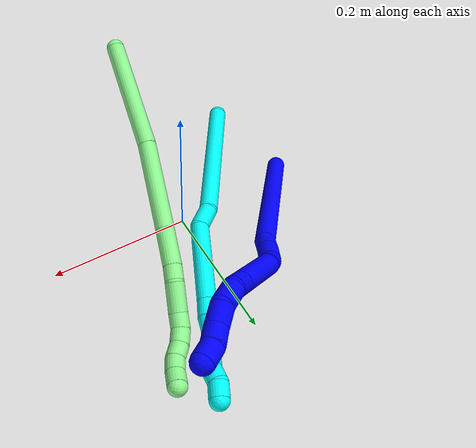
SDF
<sdf version="1.7">
 <world name="default">
  <model name="1">
   <static>0</static>
   <link name="1">
    <collision name="collision-cylinder-e_1_1_4">
     <pose>0.011985 0.020886 0.118688 -0.174193 0.099124 -0.008662</pose>
     <geometry><cylinder><radius>0.0125</radius><length>0.242212</length></cylinder></geometry>
     <surface>
      <friction><ode><mu>1.16</mu><mu2>1.16</mu2><slip1>0</slip1><slip2>0</slip2></ode></friction>
      <contact><ode><kp>1e+06</kp><kd>1</kd><max_vel>0</max_vel><min_depth>0.001</min_depth></ode></contact>
     </surface>
    </collision>
    <visual name="visual-cylinder-e_1_1_4">
     <pose>0.011985 0.020886 0.118688 -0.174193 0.099124 -0.008662</pose>
     <geometry><cylinder><radius>0.0125</radius><length>0.242212</length></cylinder></geometry>
     <material><ambient>0 0 1 1</ambient></material>
    </visual>
    <collision name="collision-cylinder-e_2_4_5">
     <pose>0.02565 0.04611 0.247919 -0.390303 0.146286 -0.028966</pose>
     <geometry><cylinder><radius>0.0125</radius><length>0.023049</length></cylinder></geometry>
     <surface>
      <friction><ode><mu>1.16</mu><mu2>1.16</mu2><slip1>0</slip1><slip2>0</slip2></ode></friction>
      <contact><ode><kp>1e+06</kp><kd>1</kd><max_vel>0</max_vel><min_depth>0.001</min_depth></ode></contact>
     </surface>
    </collision>
    <visual name="visual-cylinder-e_2_4_5">
     <pose>0.02565 0.04611 0.247919 -0.390303 0.146286 -0.028966</pose>
     <geometry><cylinder><radius>0.0125</radius><length>0.023049</length></cylinder></geometry>
     <material><ambient>0 0 1 1</ambient></material>
    </visual>
    <collision name="collision-cylinder-e_3_5_6">
     <pose>0.028859 0.055513 0.2725 -0.34629 0.102124 -0.017876</pose>
     <geometry><cylinder><radius>0.0125</radius><length>0.030002</length></cylinder></geometry>
     <surface>
      <friction><ode><mu>1.16</mu><mu2>1.16</mu2><slip1>0</slip1><slip2>0</slip2></ode></friction>
      <contact><ode><kp>1e+06</kp><kd>1</kd><max_vel>0</max_vel><min_depth>0.001</min_depth></ode></contact>
     </surface>
    </collision>
    <visual name="visual-cylinder-e_3_5_6">
     <pose>0.028859 0.055513 0.2725 -0.34629 0.102124 -0.017876</pose>
     <geometry><cylinder><radius>0.0125</radius><length>0.030002</length></cylinder></geometry>
     <material><ambient>0 0 1 1</ambient></material>
    </visual>
    <collision name="collision-cylinder-e_4_6_7">
     <pose>0.027699 0.063306 0.296185 -0.275537 -0.26207 0.036541</pose>
     <geometry><cylinder><radius>0.0125</radius><length>0.020761</length></cylinder></geometry>
     <surface>
      <friction><ode><mu>1.16</mu><mu2>1.16</mu2><slip1>0</slip1><slip2>0</slip2></ode></friction>
      <contact><ode><kp>1e+06</kp><kd>1</kd><max_vel>0</max_vel><min_depth>0.001</min_depth></ode></contact>
     </surface>
    </collision>
    <visual name="visual-cylinder-e_4_6_7">
     <pose>0.027699 0.063306 0.296185 -0.275537 -0.26207 0.036541</pose>
     <geometry><cylinder><radius>0.0125</radius><length>0.020761</length></cylinder></geometry>
     <material><ambient>0 0 1 1</ambient></material>
    </visual>
    <collision name="collision-cylinder-e_5_7_8">
     <pose>0.016578 0.064861 0.338903 0.035441 -0.249496 -0.004445</pose>
     <geometry><cylinder><radius>0.0125</radius><length>0.068296</length></cylinder></geometry>
     <surface>
      <friction><ode><mu>1.16</mu><mu2>1.16</mu2><slip1>0</slip1><slip2>0</slip2></ode></friction>
      <contact><ode><kp>1e+06</kp><kd>1</kd><max_vel>0</max_vel><min_depth>0.001</min_depth></ode></contact>
     </surface>
    </collision>
    <visual name="visual-cylinder-e_5_7_8">
     <pose>0.016578 0.064861 0.338903 0.035441 -0.249496 -0.004445</pose>
     <geometry><cylinder><radius>0.0125</radius><length>0.068296</length></cylinder></geometry>
     <material><ambient>0 0 1 1</ambient></material>
    </visual>
    <collision name="collision-cylinder-e_6_8_9">
     <pose>0.004658 0.064961 0.3837 -0.108058 -0.287531 0.015658</pose>
     <geometry><cylinder><radius>0.0125</radius><length>0.024601</length></cylinder></geometry>
     <surface>
      <friction><ode><mu>1.16</mu><mu2>1.16</mu2><slip1>0</slip1><slip2>0</slip2></ode></friction>
      <contact><ode><kp>1e+06</kp><kd>1</kd><max_vel>0</max_vel><min_depth>0.001</min_depth></ode></contact>
     </surface>
    </collision>
    <visual name="visual-cylinder-e_6_8_9">
     <pose>0.004658 0.064961 0.3837 -0.108058 -0.287531 0.015658</pose>
     <geometry><cylinder><radius>0.0125</radius><length>0.024601</length></cylinder></geometry>
     <material><ambient>0 0 1 1</ambient></material>
    </visual>
    <collision name="collision-cylinder-e_7_9_10">
     <pose>0.002162 0.06426 0.408164 0.153695 0.076886 0.005923</pose>
     <geometry><cylinder><radius>0.0125</radius><length>0.025854</length></cylinder></geometry>
     <surface>
      <friction><ode><mu>1.16</mu><mu2>1.16</mu2><slip1>0</slip1><slip2>0</slip2></ode></friction>
      <contact><ode><kp>1e+06</kp><kd>1</kd><max_vel>0</max_vel><min_depth>0.001</min_depth></ode></contact>
     </surface>
    </collision>
    <visual name="visual-cylinder-e_7_9_10">
     <pose>0.002162 0.06426 0.408164 0.153695 0.076886 0.005923</pose>
     <geometry><cylinder><radius>0.0125</radius><length>0.025854</length></cylinder></geometry>
     <material><ambient>0 0 1 1</ambient></material>
    </visual>
    <collision name="collision-cylinder-e_8_10_11">
     <pose>0.00868 0.059633 0.431037 0.256043 0.485238 0.063696</pose>
     <geometry><cylinder><radius>0.0125</radius><length>0.02369</length></cylinder></geometry>
     <surface>
      <friction><ode><mu>1.16</mu><mu2>1.16</mu2><slip1>0</slip1><slip2>0</slip2></ode></friction>
      <contact><ode><kp>1e+06</kp><kd>1</kd><max_vel>0</max_vel><min_depth>0.001</min_depth></ode></contact>
     </surface>
    </collision>
    <visual name="visual-cylinder-e_8_10_11">
     <pose>0.00868 0.059633 0.431037 0.256043 0.485238 0.063696</pose>
     <geometry><cylinder><radius>0.0125</radius><length>0.02369</length></cylinder></geometry>
     <material><ambient>0 0 1 1</ambient></material>
    </visual>
    <collision name="collision-cylinder-e_9_11_12">
     <pose>0.017417 0.057218 0.451254 -0.023645 0.308362 -0.003675</pose>
     <geometry><cylinder><radius>0.0125</radius><length>0.021166</length></cylinder></geometry>
     <surface>
      <friction><ode><mu>1.16</mu><mu2>1.16</mu2><slip1>0</slip1><slip2>0</slip2></ode></friction>
      <contact><ode><kp>1e+06</kp><kd>1</kd><max_vel>0</max_vel><min_depth>0.001</min_depth></ode></contact>
     </surface>
    </collision>
    <visual name="visual-cylinder-e_9_11_12">
     <pose>0.017417 0.057218 0.451254 -0.023645 0.308362 -0.003675</pose>
     <geometry><cylinder><radius>0.0125</radius><length>0.021166</length></cylinder></geometry>
     <material><ambient>0 0 1 1</ambient></material>
    </visual>
    <collision name="collision-cylinder-e_10_12_2">
     <pose>0.02194 0.055235 0.471187 0.221787 0.129105 0.014396</pose>
     <geometry><cylinder><radius>0.0125</radius><length>0.020368</length></cylinder></geometry>
     <surface>
      <friction><ode><mu>1.16</mu><mu2>1.16</mu2><slip1>0</slip1><slip2>0</slip2></ode></friction>
      <contact><ode><kp>1e+06</kp><kd>1</kd><max_vel>0</max_vel><min_depth>0.001</min_depth></ode></contact>
     </surface>
    </collision>
    <visual name="visual-cylinder-e_10_12_2">
     <pose>0.02194 0.055235 0.471187 0.221787 0.129105 0.014396</pose>
     <geometry><cylinder><radius>0.0125</radius><length>0.020368</length></cylinder></geometry>
     <material><ambient>0 0 1 1</ambient></material>
    </visual>
    <collision name="collision-sphere-2">
     <pose>0.023251 0.053013 0.481039 0 -0 0</pose>
     <geometry><sphere><radius>0.0125</radius></sphere></geometry>
     <surface>
      <friction><ode><mu>1.16</mu><mu2>1.16</mu2><slip1>0</slip1><slip2>0</slip2></ode></friction>
      <contact><ode><kp>1e+06</kp><kd>1</kd><max_vel>0</max_vel><min_depth>0.001</min_depth></ode></contact>
     </surface>
    </collision>
    <visual name="visual-sphere-2">
     <pose>0.023251 0.053013 0.481039 0 -0 0</pose>
     <geometry><sphere><radius>0.0125</radius></sphere></geometry>
     <material><ambient>0 0 1 1</ambient></material>
    </visual>
    <collision name="collision-sphere-12">
     <pose>0.020629 0.057456 0.461335 0 -0 0</pose>
     <geometry><sphere><radius>0.0125</radius></sphere></geometry>
     <surface>
      <friction><ode><mu>1.16</mu><mu2>1.16</mu2><slip1>0</slip1><slip2>0</slip2></ode></friction>
      <contact><ode><kp>1e+06</kp><kd>1</kd><max_vel>0</max_vel><min_depth>0.001</min_depth></ode></contact>
     </surface>
    </collision>
    <visual name="visual-sphere-12">
     <pose>0.020629 0.057456 0.461335 0 -0 0</pose>
     <geometry><sphere><radius>0.0125</radius></sphere></geometry>
     <material><ambient>0 0 1 1</ambient></material>
    </visual>
    <collision name="collision-sphere-11">
     <pose>0.014205 0.056979 0.441173 0 -0 0</pose>
     <geometry><sphere><radius>0.0125</radius></sphere></geometry>
     <surface>
      <friction><ode><mu>1.16</mu><mu2>1.16</mu2><slip1>0</slip1><slip2>0</slip2></ode></friction>
      <contact><ode><kp>1e+06</kp><kd>1</kd><max_vel>0</max_vel><min_depth>0.001</min_depth></ode></contact>
     </surface>
    </collision>
    <visual name="visual-sphere-11">
     <pose>0.014205 0.056979 0.441173 0 -0 0</pose>
     <geometry><sphere><radius>0.0125</radius></sphere></geometry>
     <material><ambient>0 0 1 1</ambient></material>
    </visual>
    <collision name="collision-sphere-10">
     <pose>0.003155 0.062287 0.4209 0 -0 0</pose>
     <geometry><sphere><radius>0.0125</radius></sphere></geometry>
     <surface>
      <friction><ode><mu>1.16</mu><mu2>1.16</mu2><slip1>0</slip1><slip2>0</slip2></ode></friction>
      <contact><ode><kp>1e+06</kp><kd>1</kd><max_vel>0</max_vel><min_depth>0.001</min_depth></ode></contact>
     </surface>
    </collision>
    <visual name="visual-sphere-10">
     <pose>0.003155 0.062287 0.4209 0 -0 0</pose>
     <geometry><sphere><radius>0.0125</radius></sphere></geometry>
     <material><ambient>0 0 1 1</ambient></material>
    </visual>
    <collision name="collision-sphere-9">
     <pose>0.001169 0.066233 0.395427 0 -0 0</pose>
     <geometry><sphere><radius>0.0125</radius></sphere></geometry>
     <surface>
      <friction><ode><mu>1.16</mu><mu2>1.16</mu2><slip1>0</slip1><slip2>0</slip2></ode></friction>
      <contact><ode><kp>1e+06</kp><kd>1</kd><max_vel>0</max_vel><min_depth>0.001</min_depth></ode></contact>
     </surface>
    </collision>
    <visual name="visual-sphere-9">
     <pose>0.001169 0.066233 0.395427 0 -0 0</pose>
     <geometry><sphere><radius>0.0125</radius></sphere></geometry>
     <material><ambient>0 0 1 1</ambient></material>
    </visual>
    <collision name="collision-sphere-4">
     <pose>0.02397 0.041772 0.237375 0 -0 0</pose>
     <geometry><sphere><radius>0.0125</radius></sphere></geometry>
     <surface>
      <friction><ode><mu>1.16</mu><mu2>1.16</mu2><slip1>0</slip1><slip2>0</slip2></ode></friction>
      <contact><ode><kp>1e+06</kp><kd>1</kd><max_vel>0</max_vel><min_depth>0.001</min_depth></ode></contact>
     </surface>
    </collision>
    <visual name="visual-sphere-4">
     <pose>0.02397 0.041772 0.237375 0 -0 0</pose>
     <geometry><sphere><radius>0.0125</radius></sphere></geometry>
     <material><ambient>0 0 1 1</ambient></material>
    </visual>
    <collision name="collision-sphere-1">
     <geometry><sphere><radius>0.0125</radius></sphere></geometry>
     <surface>
      <friction><ode><mu>1.16</mu><mu2>1.16</mu2><slip1>0</slip1><slip2>0</slip2></ode></friction>
      <contact><ode><kp>1e+06</kp><kd>1</kd><max_vel>0</max_vel><min_depth>0.001</min_depth></ode></contact>
     </surface>
    </collision>
    <visual name="visual-sphere-1">
     <geometry><sphere><radius>0.0125</radius></sphere></geometry>
     <material><ambient>0 0 1 1</ambient></material>
    </visual>
    <collision name="collision-sphere-8">
     <pose>0.008146 0.063689 0.371973 0 -0 0</pose>
     <geometry><sphere><radius>0.0125</radius></sphere></geometry>
     <surface>
      <friction><ode><mu>1.16</mu><mu2>1.16</mu2><slip1>0</slip1><slip2>0</slip2></ode></friction>
      <contact><ode><kp>1e+06</kp><kd>1</kd><max_vel>0</max_vel><min_depth>0.001</min_depth></ode></contact>
     </surface>
    </collision>
    <visual name="visual-sphere-8">
     <pose>0.008146 0.063689 0.371973 0 -0 0</pose>
     <geometry><sphere><radius>0.0125</radius></sphere></geometry>
     <material><ambient>0 0 1 1</ambient></material>
    </visual>
    <collision name="collision-sphere-5">
     <pose>0.027329 0.050448 0.258463 0 -0 0</pose>
     <geometry><sphere><radius>0.0125</radius></sphere></geometry>
     <surface>
      <friction><ode><mu>1.16</mu><mu2>1.16</mu2><slip1>0</slip1><slip2>0</slip2></ode></friction>
      <contact><ode><kp>1e+06</kp><kd>1</kd><max_vel>0</max_vel><min_depth>0.001</min_depth></ode></contact>
     </surface>
    </collision>
    <visual name="visual-sphere-5">
     <pose>0.027329 0.050448 0.258463 0 -0 0</pose>
     <geometry><sphere><radius>0.0125</radius></sphere></geometry>
     <material><ambient>0 0 1 1</ambient></material>
    </visual>
    <collision name="collision-sphere-6">
     <pose>0.030388 0.060578 0.286537 0 -0 0</pose>
     <geometry><sphere><radius>0.0125</radius></sphere></geometry>
     <surface>
      <friction><ode><mu>1.16</mu><mu2>1.16</mu2><slip1>0</slip1><slip2>0</slip2></ode></friction>
      <contact><ode><kp>1e+06</kp><kd>1</kd><max_vel>0</max_vel><min_depth>0.001</min_depth></ode></contact>
     </surface>
    </collision>
    <visual name="visual-sphere-6">
     <pose>0.030388 0.060578 0.286537 0 -0 0</pose>
     <geometry><sphere><radius>0.0125</radius></sphere></geometry>
     <material><ambient>0 0 1 1</ambient></material>
    </visual>
    <collision name="collision-sphere-7">
     <pose>0.025009 0.066034 0.305833 0 -0 0</pose>
     <geometry><sphere><radius>0.0125</radius></sphere></geometry>
     <surface>
      <friction><ode><mu>1.16</mu><mu2>1.16</mu2><slip1>0</slip1><slip2>0</slip2></ode></friction>
      <contact><ode><kp>1e+06</kp><kd>1</kd><max_vel>0</max_vel><min_depth>0.001</min_depth></ode></contact>
     </surface>
    </collision>
    <visual name="visual-sphere-7">
     <pose>0.025009 0.066034 0.305833 0 -0 0</pose>
     <geometry><sphere><radius>0.0125</radius></sphere></geometry>
     <material><ambient>0 0 1 1</ambient></material>
    </visual>
    <inertial>
     <pose>0.014518 0.041079 0.242569 0 -0 0</pose>
     <mass>0.5</mass>
     <inertia>
      <ixx>0.001224</ixx>
      <ixy>0</ixy>
      <ixz>0</ixz>
      <iyy>0.001215</iyy>
      <iyz>0</iyz>
      <izz>-0.000281</izz>
     </inertia>
    </inertial>
   </link>
   <pose>-0.167681 -0.007006 0.028545 1.00729 0.809642 1.80847</pose>
  </model>
  <model name="3">
   <static>0</static>
   <link name="3">
    <collision name="collision-cylinder-e_1_1_4">
     <pose>-0.011565 0.04499 0.096465 -0.4364 -0.108228 0.02402</pose>
     <geometry><cylinder><radius>0.0125</radius><length>0.214134</length></cylinder></geometry>
     <surface>
      <friction><ode><mu>1.16</mu><mu2>1.16</mu2><slip1>0</slip1><slip2>0</slip2></ode></friction>
      <contact><ode><kp>1e+06</kp><kd>1</kd><max_vel>0</max_vel><min_depth>0.001</min_depth></ode></contact>
     </surface>
    </collision>
    <visual name="visual-cylinder-e_1_1_4">
     <pose>-0.011565 0.04499 0.096465 -0.4364 -0.108228 0.02402</pose>
     <geometry><cylinder><radius>0.0125</radius><length>0.214134</length></cylinder></geometry>
     <material><ambient>0.003922 1 0.996078 1</ambient></material>
    </visual>
    <collision name="collision-cylinder-e_2_4_5">
     <pose>-0.020484 0.094046 0.208112 -0.261653 0.166806 -0.021998</pose>
     <geometry><cylinder><radius>0.0125</radius><length>0.031878</length></cylinder></geometry>
     <surface>
      <friction><ode><mu>1.16</mu><mu2>1.16</mu2><slip1>0</slip1><slip2>0</slip2></ode></friction>
      <contact><ode><kp>1e+06</kp><kd>1</kd><max_vel>0</max_vel><min_depth>0.001</min_depth></ode></contact>
     </surface>
    </collision>
    <visual name="visual-cylinder-e_2_4_5">
     <pose>-0.020484 0.094046 0.208112 -0.261653 0.166806 -0.021998</pose>
     <geometry><cylinder><radius>0.0125</radius><length>0.031878</length></cylinder></geometry>
     <material><ambient>0.003922 1 0.996078 1</ambient></material>
    </visual>
    <collision name="collision-cylinder-e_3_5_6">
     <pose>-0.021485 0.133246 0.266018 -0.688226 -0.065849 0.023606</pose>
     <geometry><cylinder><radius>0.0125</radius><length>0.11087</length></cylinder></geometry>
     <surface>
      <friction><ode><mu>1.16</mu><mu2>1.16</mu2><slip1>0</slip1><slip2>0</slip2></ode></friction>
      <contact><ode><kp>1e+06</kp><kd>1</kd><max_vel>0</max_vel><min_depth>0.001</min_depth></ode></contact>
     </surface>
    </collision>
    <visual name="visual-cylinder-e_3_5_6">
     <pose>-0.021485 0.133246 0.266018 -0.688226 -0.065849 0.023606</pose>
     <geometry><cylinder><radius>0.0125</radius><length>0.11087</length></cylinder></geometry>
     <material><ambient>0.003922 1 0.996078 1</ambient></material>
    </visual>
    <collision name="collision-cylinder-e_4_6_7">
     <pose>-0.026062 0.175004 0.317907 -0.625833 -0.082038 0.026556</pose>
     <geometry><cylinder><radius>0.0125</radius><length>0.022691</length></cylinder></geometry>
     <surface>
      <friction><ode><mu>1.16</mu><mu2>1.16</mu2><slip1>0</slip1><slip2>0</slip2></ode></friction>
      <contact><ode><kp>1e+06</kp><kd>1</kd><max_vel>0</max_vel><min_depth>0.001</min_depth></ode></contact>
     </surface>
    </collision>
    <visual name="visual-cylinder-e_4_6_7">
     <pose>-0.026062 0.175004 0.317907 -0.625833 -0.082038 0.026556</pose>
     <geometry><cylinder><radius>0.0125</radius><length>0.022691</length></cylinder></geometry>
     <material><ambient>0.003922 1 0.996078 1</ambient></material>
    </visual>
    <collision name="collision-cylinder-e_5_7_8">
     <pose>-0.028893 0.188552 0.334054 -0.781189 -0.190975 0.078833</pose>
     <geometry><cylinder><radius>0.0125</radius><length>0.020033</length></cylinder></geometry>
     <surface>
      <friction><ode><mu>1.16</mu><mu2>1.16</mu2><slip1>0</slip1><slip2>0</slip2></ode></friction>
      <contact><ode><kp>1e+06</kp><kd>1</kd><max_vel>0</max_vel><min_depth>0.001</min_depth></ode></contact>
     </surface>
    </collision>
    <visual name="visual-cylinder-e_5_7_8">
     <pose>-0.028893 0.188552 0.334054 -0.781189 -0.190975 0.078833</pose>
     <geometry><cylinder><radius>0.0125</radius><length>0.020033</length></cylinder></geometry>
     <material><ambient>0.003922 1 0.996078 1</ambient></material>
    </visual>
    <collision name="collision-cylinder-e_6_8_9">
     <pose>-0.032499 0.199351 0.350183 -0.400692 -0.169986 0.034599</pose>
     <geometry><cylinder><radius>0.0125</radius><length>0.020155</length></cylinder></geometry>
     <surface>
      <friction><ode><mu>1.16</mu><mu2>1.16</mu2><slip1>0</slip1><slip2>0</slip2></ode></friction>
      <contact><ode><kp>1e+06</kp><kd>1</kd><max_vel>0</max_vel><min_depth>0.001</min_depth></ode></contact>
     </surface>
    </collision>
    <visual name="visual-cylinder-e_6_8_9">
     <pose>-0.032499 0.199351 0.350183 -0.400692 -0.169986 0.034599</pose>
     <geometry><cylinder><radius>0.0125</radius><length>0.020155</length></cylinder></geometry>
     <material><ambient>0.003922 1 0.996078 1</ambient></material>
    </visual>
    <collision name="collision-cylinder-e_7_9_10">
     <pose>-0.035998 0.207882 0.368066 -0.489687 -0.17924 0.044897</pose>
     <geometry><cylinder><radius>0.0125</radius><length>0.020125</length></cylinder></geometry>
     <surface>
      <friction><ode><mu>1.16</mu><mu2>1.16</mu2><slip1>0</slip1><slip2>0</slip2></ode></friction>
      <contact><ode><kp>1e+06</kp><kd>1</kd><max_vel>0</max_vel><min_depth>0.001</min_depth></ode></contact>
     </surface>
    </collision>
    <visual name="visual-cylinder-e_7_9_10">
     <pose>-0.035998 0.207882 0.368066 -0.489687 -0.17924 0.044897</pose>
     <geometry><cylinder><radius>0.0125</radius><length>0.020125</length></cylinder></geometry>
     <material><ambient>0.003922 1 0.996078 1</ambient></material>
    </visual>
    <collision name="collision-cylinder-e_8_10_11">
     <pose>-0.042726 0.213725 0.385484 -0.135732 -0.512881 0.035642</pose>
     <geometry><cylinder><radius>0.0125</radius><length>0.020109</length></cylinder></geometry>
     <surface>
      <friction><ode><mu>1.16</mu><mu2>1.16</mu2><slip1>0</slip1><slip2>0</slip2></ode></friction>
      <contact><ode><kp>1e+06</kp><kd>1</kd><max_vel>0</max_vel><min_depth>0.001</min_depth></ode></contact>
     </surface>
    </collision>
    <visual name="visual-cylinder-e_8_10_11">
     <pose>-0.042726 0.213725 0.385484 -0.135732 -0.512881 0.035642</pose>
     <geometry><cylinder><radius>0.0125</radius><length>0.020109</length></cylinder></geometry>
     <material><ambient>0.003922 1 0.996078 1</ambient></material>
    </visual>
    <collision name="collision-cylinder-e_9_11_12">
     <pose>-0.052424 0.22061 0.400861 -0.705164 -0.496474 0.185991</pose>
     <geometry><cylinder><radius>0.0125</radius><length>0.020003</length></cylinder></geometry>
     <surface>
      <friction><ode><mu>1.16</mu><mu2>1.16</mu2><slip1>0</slip1><slip2>0</slip2></ode></friction>
      <contact><ode><kp>1e+06</kp><kd>1</kd><max_vel>0</max_vel><min_depth>0.001</min_depth></ode></contact>
     </surface>
    </collision>
    <visual name="visual-cylinder-e_9_11_12">
     <pose>-0.052424 0.22061 0.400861 -0.705164 -0.496474 0.185991</pose>
     <geometry><cylinder><radius>0.0125</radius><length>0.020003</length></cylinder></geometry>
     <material><ambient>0.003922 1 0.996078 1</ambient></material>
    </visual>
    <collision name="collision-cylinder-e_10_12_2">
     <pose>-0.058311 0.232074 0.415654 -0.618695 -0.112608 0.036025</pose>
     <geometry><cylinder><radius>0.0125</radius><length>0.020002</length></cylinder></geometry>
     <surface>
      <friction><ode><mu>1.16</mu><mu2>1.16</mu2><slip1>0</slip1><slip2>0</slip2></ode></friction>
      <contact><ode><kp>1e+06</kp><kd>1</kd><max_vel>0</max_vel><min_depth>0.001</min_depth></ode></contact>
     </surface>
    </collision>
    <visual name="visual-cylinder-e_10_12_2">
     <pose>-0.058311 0.232074 0.415654 -0.618695 -0.112608 0.036025</pose>
     <geometry><cylinder><radius>0.0125</radius><length>0.020002</length></cylinder></geometry>
     <material><ambient>0.003922 1 0.996078 1</ambient></material>
    </visual>
    <collision name="collision-sphere-2">
     <pose>-0.059435 0.237837 0.423749 0 -0 0</pose>
     <geometry><sphere><radius>0.0125</radius></sphere></geometry>
     <surface>
      <friction><ode><mu>1.16</mu><mu2>1.16</mu2><slip1>0</slip1><slip2>0</slip2></ode></friction>
      <contact><ode><kp>1e+06</kp><kd>1</kd><max_vel>0</max_vel><min_depth>0.001</min_depth></ode></contact>
     </surface>
    </collision>
    <visual name="visual-sphere-2">
     <pose>-0.059435 0.237837 0.423749 0 -0 0</pose>
     <geometry><sphere><radius>0.0125</radius></sphere></geometry>
     <material><ambient>0.003922 1 0.996078 1</ambient></material>
    </visual>
    <collision name="collision-sphere-12">
     <pose>-0.057188 0.22631 0.407558 0 -0 0</pose>
     <geometry><sphere><radius>0.0125</radius></sphere></geometry>
     <surface>
      <friction><ode><mu>1.16</mu><mu2>1.16</mu2><slip1>0</slip1><slip2>0</slip2></ode></friction>
      <contact><ode><kp>1e+06</kp><kd>1</kd><max_vel>0</max_vel><min_depth>0.001</min_depth></ode></contact>
     </surface>
    </collision>
    <visual name="visual-sphere-12">
     <pose>-0.057188 0.22631 0.407558 0 -0 0</pose>
     <geometry><sphere><radius>0.0125</radius></sphere></geometry>
     <material><ambient>0.003922 1 0.996078 1</ambient></material>
    </visual>
    <collision name="collision-sphere-11">
     <pose>-0.04766 0.21491 0.394165 0 -0 0</pose>
     <geometry><sphere><radius>0.0125</radius></sphere></geometry>
     <surface>
      <friction><ode><mu>1.16</mu><mu2>1.16</mu2><slip1>0</slip1><slip2>0</slip2></ode></friction>
      <contact><ode><kp>1e+06</kp><kd>1</kd><max_vel>0</max_vel><min_depth>0.001</min_depth></ode></contact>
     </surface>
    </collision>
    <visual name="visual-sphere-11">
     <pose>-0.04766 0.21491 0.394165 0 -0 0</pose>
     <geometry><sphere><radius>0.0125</radius></sphere></geometry>
     <material><ambient>0.003922 1 0.996078 1</ambient></material>
    </visual>
    <collision name="collision-sphere-10">
     <pose>-0.037792 0.212539 0.376804 0 -0 0</pose>
     <geometry><sphere><radius>0.0125</radius></sphere></geometry>
     <surface>
      <friction><ode><mu>1.16</mu><mu2>1.16</mu2><slip1>0</slip1><slip2>0</slip2></ode></friction>
      <contact><ode><kp>1e+06</kp><kd>1</kd><max_vel>0</max_vel><min_depth>0.001</min_depth></ode></contact>
     </surface>
    </collision>
    <visual name="visual-sphere-10">
     <pose>-0.037792 0.212539 0.376804 0 -0 0</pose>
     <geometry><sphere><radius>0.0125</radius></sphere></geometry>
     <material><ambient>0.003922 1 0.996078 1</ambient></material>
    </visual>
    <collision name="collision-sphere-9">
     <pose>-0.034204 0.203225 0.359329 0 -0 0</pose>
     <geometry><sphere><radius>0.0125</radius></sphere></geometry>
     <surface>
      <friction><ode><mu>1.16</mu><mu2>1.16</mu2><slip1>0</slip1><slip2>0</slip2></ode></friction>
      <contact><ode><kp>1e+06</kp><kd>1</kd><max_vel>0</max_vel><min_depth>0.001</min_depth></ode></contact>
     </surface>
    </collision>
    <visual name="visual-sphere-9">
     <pose>-0.034204 0.203225 0.359329 0 -0 0</pose>
     <geometry><sphere><radius>0.0125</radius></sphere></geometry>
     <material><ambient>0.003922 1 0.996078 1</ambient></material>
    </visual>
    <collision name="collision-sphere-4">
     <pose>-0.02313 0.08998 0.19293 0 -0 0</pose>
     <geometry><sphere><radius>0.0125</radius></sphere></geometry>
     <surface>
      <friction><ode><mu>1.16</mu><mu2>1.16</mu2><slip1>0</slip1><slip2>0</slip2></ode></friction>
      <contact><ode><kp>1e+06</kp><kd>1</kd><max_vel>0</max_vel><min_depth>0.001</min_depth></ode></contact>
     </surface>
    </collision>
    <visual name="visual-sphere-4">
     <pose>-0.02313 0.08998 0.19293 0 -0 0</pose>
     <geometry><sphere><radius>0.0125</radius></sphere></geometry>
     <material><ambient>0.003922 1 0.996078 1</ambient></material>
    </visual>
    <collision name="collision-sphere-1">
     <geometry><sphere><radius>0.0125</radius></sphere></geometry>
     <surface>
      <friction><ode><mu>1.16</mu><mu2>1.16</mu2><slip1>0</slip1><slip2>0</slip2></ode></friction>
      <contact><ode><kp>1e+06</kp><kd>1</kd><max_vel>0</max_vel><min_depth>0.001</min_depth></ode></contact>
     </surface>
    </collision>
    <visual name="visual-sphere-1">
     <geometry><sphere><radius>0.0125</radius></sphere></geometry>
     <material><ambient>0.003922 1 0.996078 1</ambient></material>
    </visual>
    <collision name="collision-sphere-8">
     <pose>-0.030795 0.195477 0.341037 0 -0 0</pose>
     <geometry><sphere><radius>0.0125</radius></sphere></geometry>
     <surface>
      <friction><ode><mu>1.16</mu><mu2>1.16</mu2><slip1>0</slip1><slip2>0</slip2></ode></friction>
      <contact><ode><kp>1e+06</kp><kd>1</kd><max_vel>0</max_vel><min_depth>0.001</min_depth></ode></contact>
     </surface>
    </collision>
    <visual name="visual-sphere-8">
     <pose>-0.030795 0.195477 0.341037 0 -0 0</pose>
     <geometry><sphere><radius>0.0125</radius></sphere></geometry>
     <material><ambient>0.003922 1 0.996078 1</ambient></material>
    </visual>
    <collision name="collision-sphere-5">
     <pose>-0.017837 0.098112 0.223295 0 -0 0</pose>
     <geometry><sphere><radius>0.0125</radius></sphere></geometry>
     <surface>
      <friction><ode><mu>1.16</mu><mu2>1.16</mu2><slip1>0</slip1><slip2>0</slip2></ode></friction>
      <contact><ode><kp>1e+06</kp><kd>1</kd><max_vel>0</max_vel><min_depth>0.001</min_depth></ode></contact>
     </surface>
    </collision>
    <visual name="visual-sphere-5">
     <pose>-0.017837 0.098112 0.223295 0 -0 0</pose>
     <geometry><sphere><radius>0.0125</radius></sphere></geometry>
     <material><ambient>0.003922 1 0.996078 1</ambient></material>
    </visual>
    <collision name="collision-sphere-6">
     <pose>-0.025133 0.16838 0.308742 0 -0 0</pose>
     <geometry><sphere><radius>0.0125</radius></sphere></geometry>
     <surface>
      <friction><ode><mu>1.16</mu><mu2>1.16</mu2><slip1>0</slip1><slip2>0</slip2></ode></friction>
      <contact><ode><kp>1e+06</kp><kd>1</kd><max_vel>0</max_vel><min_depth>0.001</min_depth></ode></contact>
     </surface>
    </collision>
    <visual name="visual-sphere-6">
     <pose>-0.025133 0.16838 0.308742 0 -0 0</pose>
     <geometry><sphere><radius>0.0125</radius></sphere></geometry>
     <material><ambient>0.003922 1 0.996078 1</ambient></material>
    </visual>
    <collision name="collision-sphere-7">
     <pose>-0.026992 0.181628 0.327071 0 -0 0</pose>
     <geometry><sphere><radius>0.0125</radius></sphere></geometry>
     <surface>
      <friction><ode><mu>1.16</mu><mu2>1.16</mu2><slip1>0</slip1><slip2>0</slip2></ode></friction>
      <contact><ode><kp>1e+06</kp><kd>1</kd><max_vel>0</max_vel><min_depth>0.001</min_depth></ode></contact>
     </surface>
    </collision>
    <visual name="visual-sphere-7">
     <pose>-0.026992 0.181628 0.327071 0 -0 0</pose>
     <geometry><sphere><radius>0.0125</radius></sphere></geometry>
     <material><ambient>0.003922 1 0.996078 1</ambient></material>
    </visual>
    <inertial>
     <pose>-0.022271 0.113415 0.218478 0 -0 0</pose>
     <mass>0.5</mass>
     <inertia>
      <ixx>0.000972</ixx>
      <ixy>0</ixy>
      <ixz>0</ixz>
      <iyy>0.000895</iyy>
      <iyz>0</iyz>
      <izz>-0.000296</izz>
     </inertia>
    </inertial>
   </link>
   <pose>-0.138535 -0.134904 0.045738 -1.15693 0.843172 -0.682244</pose>
  </model>
  <model name="13">
   <static>0</static>
   <link name="13">
    <collision name="collision-cylinder-e_1_1_4">
     <pose>0.013881 0.069671 -0.03887 -2.07968 0.17226 -0.291993</pose>
     <geometry><cylinder><radius>0.0125</radius><length>0.161958</length></cylinder></geometry>
     <surface>
      <friction><ode><mu>1.16</mu><mu2>1.16</mu2><slip1>0</slip1><slip2>0</slip2></ode></friction>
      <contact><ode><kp>1e+06</kp><kd>1</kd><max_vel>0</max_vel><min_depth>0.001</min_depth></ode></contact>
     </surface>
    </collision>
    <visual name="visual-cylinder-e_1_1_4">
     <pose>0.013881 0.069671 -0.03887 -2.07968 0.17226 -0.291993</pose>
     <geometry><cylinder><radius>0.0125</radius><length>0.161958</length></cylinder></geometry>
     <material><ambient>0.564706 0.984314 0.572549 1</ambient></material>
    </visual>
    <collision name="collision-cylinder-e_2_4_5">
     <pose>0.036218 0.196282 -0.102864 -1.98635 0.135062 -0.206797</pose>
     <geometry><cylinder><radius>0.0125</radius><length>0.125616</length></cylinder></geometry>
     <surface>
      <friction><ode><mu>1.16</mu><mu2>1.16</mu2><slip1>0</slip1><slip2>0</slip2></ode></friction>
      <contact><ode><kp>1e+06</kp><kd>1</kd><max_vel>0</max_vel><min_depth>0.001</min_depth></ode></contact>
     </surface>
    </collision>
    <visual name="visual-cylinder-e_2_4_5">
     <pose>0.036218 0.196282 -0.102864 -1.98635 0.135062 -0.206797</pose>
     <geometry><cylinder><radius>0.0125</radius><length>0.125616</length></cylinder></geometry>
     <material><ambient>0.564706 0.984314 0.572549 1</ambient></material>
    </visual>
    <collision name="collision-cylinder-e_3_5_6">
     <pose>0.04795 0.276649 -0.138068 -1.97711 0.127702 -0.193622</pose>
     <geometry><cylinder><radius>0.0125</radius><length>0.051426</length></cylinder></geometry>
     <surface>
      <friction><ode><mu>1.16</mu><mu2>1.16</mu2><slip1>0</slip1><slip2>0</slip2></ode></friction>
      <contact><ode><kp>1e+06</kp><kd>1</kd><max_vel>0</max_vel><min_depth>0.001</min_depth></ode></contact>
     </surface>
    </collision>
    <visual name="visual-cylinder-e_3_5_6">
     <pose>0.04795 0.276649 -0.138068 -1.97711 0.127702 -0.193622</pose>
     <geometry><cylinder><radius>0.0125</radius><length>0.051426</length></cylinder></geometry>
     <material><ambient>0.564706 0.984314 0.572549 1</ambient></material>
    </visual>
    <collision name="collision-cylinder-e_4_6_7">
     <pose>0.051294 0.310007 -0.151752 -1.91891 0.006576 -0.009382</pose>
     <geometry><cylinder><radius>0.0125</radius><length>0.02113</length></cylinder></geometry>
     <surface>
      <friction><ode><mu>1.16</mu><mu2>1.16</mu2><slip1>0</slip1><slip2>0</slip2></ode></friction>
      <contact><ode><kp>1e+06</kp><kd>1</kd><max_vel>0</max_vel><min_depth>0.001</min_depth></ode></contact>
     </surface>
    </collision>
    <visual name="visual-cylinder-e_4_6_7">
     <pose>0.051294 0.310007 -0.151752 -1.91891 0.006576 -0.009382</pose>
     <geometry><cylinder><radius>0.0125</radius><length>0.02113</length></cylinder></geometry>
     <material><ambient>0.564706 0.984314 0.572549 1</ambient></material>
    </visual>
    <collision name="collision-cylinder-e_5_7_8">
     <pose>0.057772 0.337743 -0.160856 -1.87043 0.331221 -0.445619</pose>
     <geometry><cylinder><radius>0.0125</radius><length>0.039413</length></cylinder></geometry>
     <surface>
      <friction><ode><mu>1.16</mu><mu2>1.16</mu2><slip1>0</slip1><slip2>0</slip2></ode></friction>
      <contact><ode><kp>1e+06</kp><kd>1</kd><max_vel>0</max_vel><min_depth>0.001</min_depth></ode></contact>
     </surface>
    </collision>
    <visual name="visual-cylinder-e_5_7_8">
     <pose>0.057772 0.337743 -0.160856 -1.87043 0.331221 -0.445619</pose>
     <geometry><cylinder><radius>0.0125</radius><length>0.039413</length></cylinder></geometry>
     <material><ambient>0.564706 0.984314 0.572549 1</ambient></material>
    </visual>
    <collision name="collision-cylinder-e_6_8_9">
     <pose>0.065653 0.364911 -0.169867 -1.92945 0.14612 -0.210422</pose>
     <geometry><cylinder><radius>0.0125</radius><length>0.020214</length></cylinder></geometry>
     <surface>
      <friction><ode><mu>1.16</mu><mu2>1.16</mu2><slip1>0</slip1><slip2>0</slip2></ode></friction>
      <contact><ode><kp>1e+06</kp><kd>1</kd><max_vel>0</max_vel><min_depth>0.001</min_depth></ode></contact>
     </surface>
    </collision>
    <visual name="visual-cylinder-e_6_8_9">
     <pose>0.065653 0.364911 -0.169867 -1.92945 0.14612 -0.210422</pose>
     <geometry><cylinder><radius>0.0125</radius><length>0.020214</length></cylinder></geometry>
     <material><ambient>0.564706 0.984314 0.572549 1</ambient></material>
    </visual>
    <collision name="collision-cylinder-e_7_9_10">
     <pose>0.066282 0.384179 -0.174998 -1.73306 -0.083714 0.098511</pose>
     <geometry><cylinder><radius>0.0125</radius><length>0.020145</length></cylinder></geometry>
     <surface>
      <friction><ode><mu>1.16</mu><mu2>1.16</mu2><slip1>0</slip1><slip2>0</slip2></ode></friction>
      <contact><ode><kp>1e+06</kp><kd>1</kd><max_vel>0</max_vel><min_depth>0.001</min_depth></ode></contact>
     </surface>
    </collision>
    <visual name="visual-cylinder-e_7_9_10">
     <pose>0.066282 0.384179 -0.174998 -1.73306 -0.083714 0.098511</pose>
     <geometry><cylinder><radius>0.0125</radius><length>0.020145</length></cylinder></geometry>
     <material><ambient>0.564706 0.984314 0.572549 1</ambient></material>
    </visual>
    <collision name="collision-cylinder-e_8_10_11">
     <pose>0.062333 0.403616 -0.176663 -1.57534 -0.315056 0.316468</pose>
     <geometry><cylinder><radius>0.0125</radius><length>0.020049</length></cylinder></geometry>
     <surface>
      <friction><ode><mu>1.16</mu><mu2>1.16</mu2><slip1>0</slip1><slip2>0</slip2></ode></friction>
      <contact><ode><kp>1e+06</kp><kd>1</kd><max_vel>0</max_vel><min_depth>0.001</min_depth></ode></contact>
     </surface>
    </collision>
    <visual name="visual-cylinder-e_8_10_11">
     <pose>0.062333 0.403616 -0.176663 -1.57534 -0.315056 0.316468</pose>
     <geometry><cylinder><radius>0.0125</radius><length>0.020049</length></cylinder></geometry>
     <material><ambient>0.564706 0.984314 0.572549 1</ambient></material>
    </visual>
    <collision name="collision-cylinder-e_9_11_12">
     <pose>0.055635 0.422061 -0.179508 -1.87525 -0.366953 0.495258</pose>
     <geometry><cylinder><radius>0.0125</radius><length>0.020022</length></cylinder></geometry>
     <surface>
      <friction><ode><mu>1.16</mu><mu2>1.16</mu2><slip1>0</slip1><slip2>0</slip2></ode></friction>
      <contact><ode><kp>1e+06</kp><kd>1</kd><max_vel>0</max_vel><min_depth>0.001</min_depth></ode></contact>
     </surface>
    </collision>
    <visual name="visual-cylinder-e_9_11_12">
     <pose>0.055635 0.422061 -0.179508 -1.87525 -0.366953 0.495258</pose>
     <geometry><cylinder><radius>0.0125</radius><length>0.020022</length></cylinder></geometry>
     <material><ambient>0.564706 0.984314 0.572549 1</ambient></material>
    </visual>
    <collision name="collision-cylinder-e_10_12_2">
     <pose>0.047697 0.439095 -0.18624 -2.02167 -0.449009 0.698644</pose>
     <geometry><cylinder><radius>0.0125</radius><length>0.020027</length></cylinder></geometry>
     <surface>
      <friction><ode><mu>1.16</mu><mu2>1.16</mu2><slip1>0</slip1><slip2>0</slip2></ode></friction>
      <contact><ode><kp>1e+06</kp><kd>1</kd><max_vel>0</max_vel><min_depth>0.001</min_depth></ode></contact>
     </surface>
    </collision>
    <visual name="visual-cylinder-e_10_12_2">
     <pose>0.047697 0.439095 -0.18624 -2.02167 -0.449009 0.698644</pose>
     <geometry><cylinder><radius>0.0125</radius><length>0.020027</length></cylinder></geometry>
     <material><ambient>0.564706 0.984314 0.572549 1</ambient></material>
    </visual>
    <collision name="collision-sphere-2">
     <pose>0.043351 0.447215 -0.190171 0 -0 0</pose>
     <geometry><sphere><radius>0.0125</radius></sphere></geometry>
     <surface>
      <friction><ode><mu>1.16</mu><mu2>1.16</mu2><slip1>0</slip1><slip2>0</slip2></ode></friction>
      <contact><ode><kp>1e+06</kp><kd>1</kd><max_vel>0</max_vel><min_depth>0.001</min_depth></ode></contact>
     </surface>
    </collision>
    <visual name="visual-sphere-2">
     <pose>0.043351 0.447215 -0.190171 0 -0 0</pose>
     <geometry><sphere><radius>0.0125</radius></sphere></geometry>
     <material><ambient>0.564706 0.984314 0.572549 1</ambient></material>
    </visual>
    <collision name="collision-sphere-12">
     <pose>0.052044 0.430976 -0.182309 0 -0 0</pose>
     <geometry><sphere><radius>0.0125</radius></sphere></geometry>
     <surface>
      <friction><ode><mu>1.16</mu><mu2>1.16</mu2><slip1>0</slip1><slip2>0</slip2></ode></friction>
      <contact><ode><kp>1e+06</kp><kd>1</kd><max_vel>0</max_vel><min_depth>0.001</min_depth></ode></contact>
     </surface>
    </collision>
    <visual name="visual-sphere-12">
     <pose>0.052044 0.430976 -0.182309 0 -0 0</pose>
     <geometry><sphere><radius>0.0125</radius></sphere></geometry>
     <material><ambient>0.564706 0.984314 0.572549 1</ambient></material>
    </visual>
    <collision name="collision-sphere-11">
     <pose>0.059227 0.413147 -0.176706 0 -0 0</pose>
     <geometry><sphere><radius>0.0125</radius></sphere></geometry>
     <surface>
      <friction><ode><mu>1.16</mu><mu2>1.16</mu2><slip1>0</slip1><slip2>0</slip2></ode></friction>
      <contact><ode><kp>1e+06</kp><kd>1</kd><max_vel>0</max_vel><min_depth>0.001</min_depth></ode></contact>
     </surface>
    </collision>
    <visual name="visual-sphere-11">
     <pose>0.059227 0.413147 -0.176706 0 -0 0</pose>
     <geometry><sphere><radius>0.0125</radius></sphere></geometry>
     <material><ambient>0.564706 0.984314 0.572549 1</ambient></material>
    </visual>
    <collision name="collision-sphere-10">
     <pose>0.06544 0.394085 -0.17662 0 -0 0</pose>
     <geometry><sphere><radius>0.0125</radius></sphere></geometry>
     <surface>
      <friction><ode><mu>1.16</mu><mu2>1.16</mu2><slip1>0</slip1><slip2>0</slip2></ode></friction>
      <contact><ode><kp>1e+06</kp><kd>1</kd><max_vel>0</max_vel><min_depth>0.001</min_depth></ode></contact>
     </surface>
    </collision>
    <visual name="visual-sphere-10">
     <pose>0.06544 0.394085 -0.17662 0 -0 0</pose>
     <geometry><sphere><radius>0.0125</radius></sphere></geometry>
     <material><ambient>0.564706 0.984314 0.572549 1</ambient></material>
    </visual>
    <collision name="collision-sphere-9">
     <pose>0.067124 0.374274 -0.173377 0 -0 0</pose>
     <geometry><sphere><radius>0.0125</radius></sphere></geometry>
     <surface>
      <friction><ode><mu>1.16</mu><mu2>1.16</mu2><slip1>0</slip1><slip2>0</slip2></ode></friction>
      <contact><ode><kp>1e+06</kp><kd>1</kd><max_vel>0</max_vel><min_depth>0.001</min_depth></ode></contact>
     </surface>
    </collision>
    <visual name="visual-sphere-9">
     <pose>0.067124 0.374274 -0.173377 0 -0 0</pose>
     <geometry><sphere><radius>0.0125</radius></sphere></geometry>
     <material><ambient>0.564706 0.984314 0.572549 1</ambient></material>
    </visual>
    <collision name="collision-sphere-4">
     <pose>0.027761 0.139343 -0.077739 0 -0 0</pose>
     <geometry><sphere><radius>0.0125</radius></sphere></geometry>
     <surface>
      <friction><ode><mu>1.16</mu><mu2>1.16</mu2><slip1>0</slip1><slip2>0</slip2></ode></friction>
      <contact><ode><kp>1e+06</kp><kd>1</kd><max_vel>0</max_vel><min_depth>0.001</min_depth></ode></contact>
     </surface>
    </collision>
    <visual name="visual-sphere-4">
     <pose>0.027761 0.139343 -0.077739 0 -0 0</pose>
     <geometry><sphere><radius>0.0125</radius></sphere></geometry>
     <material><ambient>0.564706 0.984314 0.572549 1</ambient></material>
    </visual>
    <collision name="collision-sphere-1">
     <geometry><sphere><radius>0.0125</radius></sphere></geometry>
     <surface>
      <friction><ode><mu>1.16</mu><mu2>1.16</mu2><slip1>0</slip1><slip2>0</slip2></ode></friction>
      <contact><ode><kp>1e+06</kp><kd>1</kd><max_vel>0</max_vel><min_depth>0.001</min_depth></ode></contact>
     </surface>
    </collision>
    <visual name="visual-sphere-1">
     <geometry><sphere><radius>0.0125</radius></sphere></geometry>
     <material><ambient>0.564706 0.984314 0.572549 1</ambient></material>
    </visual>
    <collision name="collision-sphere-8">
     <pose>0.064181 0.355548 -0.166357 0 -0 0</pose>
     <geometry><sphere><radius>0.0125</radius></sphere></geometry>
     <surface>
      <friction><ode><mu>1.16</mu><mu2>1.16</mu2><slip1>0</slip1><slip2>0</slip2></ode></friction>
      <contact><ode><kp>1e+06</kp><kd>1</kd><max_vel>0</max_vel><min_depth>0.001</min_depth></ode></contact>
     </surface>
    </collision>
    <visual name="visual-sphere-8">
     <pose>0.064181 0.355548 -0.166357 0 -0 0</pose>
     <geometry><sphere><radius>0.0125</radius></sphere></geometry>
     <material><ambient>0.564706 0.984314 0.572549 1</ambient></material>
    </visual>
    <collision name="collision-sphere-5">
     <pose>0.044675 0.253221 -0.127988 0 -0 0</pose>
     <geometry><sphere><radius>0.0125</radius></sphere></geometry>
     <surface>
      <friction><ode><mu>1.16</mu><mu2>1.16</mu2><slip1>0</slip1><slip2>0</slip2></ode></friction>
      <contact><ode><kp>1e+06</kp><kd>1</kd><max_vel>0</max_vel><min_depth>0.001</min_depth></ode></contact>
     </surface>
    </collision>
    <visual name="visual-sphere-5">
     <pose>0.044675 0.253221 -0.127988 0 -0 0</pose>
     <geometry><sphere><radius>0.0125</radius></sphere></geometry>
     <material><ambient>0.564706 0.984314 0.572549 1</ambient></material>
    </visual>
    <collision name="collision-sphere-6">
     <pose>0.051225 0.300076 -0.148148 0 -0 0</pose>
     <geometry><sphere><radius>0.0125</radius></sphere></geometry>
     <surface>
      <friction><ode><mu>1.16</mu><mu2>1.16</mu2><slip1>0</slip1><slip2>0</slip2></ode></friction>
      <contact><ode><kp>1e+06</kp><kd>1</kd><max_vel>0</max_vel><min_depth>0.001</min_depth></ode></contact>
     </surface>
    </collision>
    <visual name="visual-sphere-6">
     <pose>0.051225 0.300076 -0.148148 0 -0 0</pose>
     <geometry><sphere><radius>0.0125</radius></sphere></geometry>
     <material><ambient>0.564706 0.984314 0.572549 1</ambient></material>
    </visual>
    <collision name="collision-sphere-7">
     <pose>0.051364 0.319938 -0.155356 0 -0 0</pose>
     <geometry><sphere><radius>0.0125</radius></sphere></geometry>
     <surface>
      <friction><ode><mu>1.16</mu><mu2>1.16</mu2><slip1>0</slip1><slip2>0</slip2></ode></friction>
      <contact><ode><kp>1e+06</kp><kd>1</kd><max_vel>0</max_vel><min_depth>0.001</min_depth></ode></contact>
     </surface>
    </collision>
    <visual name="visual-sphere-7">
     <pose>0.051364 0.319938 -0.155356 0 -0 0</pose>
     <geometry><sphere><radius>0.0125</radius></sphere></geometry>
     <material><ambient>0.564706 0.984314 0.572549 1</ambient></material>
    </visual>
    <inertial>
     <pose>0.037211 0.220961 -0.107376 0 -0 0</pose>
     <mass>0.5</mass>
     <inertia>
      <ixx>0.000395</ixx>
      <ixy>0</ixy>
      <ixz>0</ixz>
      <iyy>-0.000328</iyy>
      <iyz>0</iyz>
      <izz>-0.000592</izz>
     </inertia>
    </inertial>
   </link>
   <pose>-0.002567 -0.203628 0.17871 -1.8919 1.29733 -2.63397</pose>
  </model>
 </world>
</sdf>
